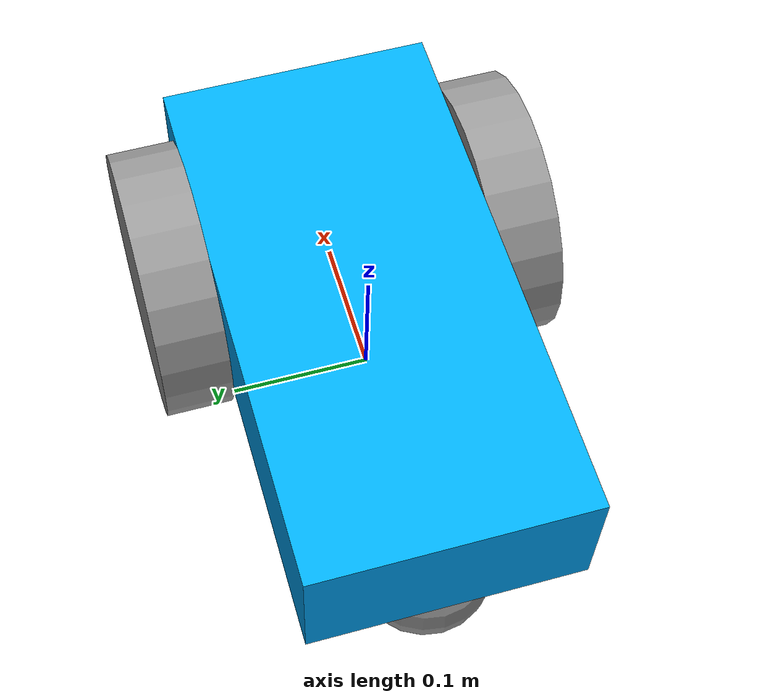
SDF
<?xml version='1.0'?>
<sdf version='1.6'>
  <model name='Robot'>
    <link name='link_0'>
      <inertial>
        <mass>9.4</mass>
        <inertia>
          <ixx>0.0391667</ixx>
          <ixy>0</ixy>
          <ixz>0</ixz>
          <iyy>0.133167</iyy>
          <iyz>0</iyz>
          <izz>0.156667</izz>
        </inertia>
        <pose frame=''>0 0 0 0 -0 0</pose>
      </inertial>
      <pose frame=''>0 0 0.05 0 -0 0</pose>
      <gravity>1</gravity>
      <self_collide>0</self_collide>
      <kinematic>0</kinematic>
      <enable_wind>0</enable_wind>
      <visual name='visual'>
        <pose frame=''>0 0 0 0 -0 0</pose>
        <geometry>
          <box>
            <size>0.4 0.2 0.1</size>
          </box>
        </geometry>
        <material>
          <lighting>1</lighting>
          <script>
            <uri>file://media/materials/scripts/gazebo.material</uri>
            <name>Gazebo/Grey</name>
          </script>
          <shader type='pixel'>
            <normal_map>__default__</normal_map>
          </shader>
          <ambient>0 0.667 1 1</ambient>
          <diffuse>0.7 0.7 0.7 1</diffuse>
          <specular>0.01 0.01 0.01 1</specular>
          <emissive>0 0 0 1</emissive>
        </material>
        <transparency>0</transparency>
        <cast_shadows>1</cast_shadows>
      </visual>
      <collision name='collision'>
        <laser_retro>0</laser_retro>
        <max_contacts>10</max_contacts>
        <pose frame=''>0 0 0 0 -0 0</pose>
        <geometry>
          <box>
            <size>0.4 0.2 0.1</size>
          </box>
        </geometry>
        <surface>
          <friction>
            <ode>
              <mu>1</mu>
              <mu2>1</mu2>
              <fdir1>0 0 0</fdir1>
              <slip1>0</slip1>
              <slip2>0</slip2>
            </ode>
            <torsional>
              <coefficient>1</coefficient>
              <patch_radius>0</patch_radius>
              <surface_radius>0</surface_radius>
              <use_patch_radius>1</use_patch_radius>
              <ode>
                <slip>0</slip>
              </ode>
            </torsional>
          </friction>
          <bounce>
            <restitution_coefficient>0</restitution_coefficient>
            <threshold>1e+06</threshold>
          </bounce>
          <contact>
            <collide_without_contact>0</collide_without_contact>
            <collide_without_contact_bitmask>1</collide_without_contact_bitmask>
            <collide_bitmask>1</collide_bitmask>
            <ode>
              <soft_cfm>0</soft_cfm>
              <soft_erp>0.2</soft_erp>
              <kp>1e+13</kp>
              <kd>1</kd>
              <max_vel>0.01</max_vel>
              <min_depth>0</min_depth>
            </ode>
            <bullet>
              <split_impulse>1</split_impulse>
              <split_impulse_penetration_threshold>-0.01</split_impulse_penetration_threshold>
              <soft_cfm>0</soft_cfm>
              <soft_erp>0.2</soft_erp>
              <kp>1e+13</kp>
              <kd>1</kd>
            </bullet>
          </contact>
        </surface>
      </collision>
    </link>
    <link name='link_0_0'>
      <inertial>
        <mass>1</mass>
        <inertia>
          <ixx>0.145833</ixx>
          <ixy>0</ixy>
          <ixz>0</ixz>
          <iyy>0.145833</iyy>
          <iyz>0</iyz>
          <izz>0.125</izz>
        </inertia>
        <pose frame=''>0 0 0 0 -0 0</pose>
      </inertial>
      <pose frame=''>0.099992 0.125029 0.014152 1.5707 -0 3.1414</pose>
      <gravity>1</gravity>
      <self_collide>0</self_collide>
      <kinematic>0</kinematic>
      <enable_wind>0</enable_wind>
      <visual name='visual'>
        <pose frame=''>0 0 0 0 -0 0</pose>
        <geometry>
          <cylinder>
            <radius>0.1</radius>
            <length>0.05</length>
          </cylinder>
        </geometry>
        <material>
          <lighting>1</lighting>
          <script>
            <uri>file://media/materials/scripts/gazebo.material</uri>
            <name>Gazebo/Grey</name>
          </script>
          <shader type='pixel'>
            <normal_map>__default__</normal_map>
          </shader>
          <ambient>0 0 0 1</ambient>
          <diffuse>0.7 0.7 0.7 1</diffuse>
          <specular>0.01 0.01 0.01 1</specular>
          <emissive>0 0 0 1</emissive>
        </material>
        <transparency>0</transparency>
        <cast_shadows>1</cast_shadows>
      </visual>
      <collision name='collision'>
        <laser_retro>0</laser_retro>
        <max_contacts>10</max_contacts>
        <pose frame=''>0 0 0 0 -0 0</pose>
        <geometry>
          <cylinder>
            <radius>0.1</radius>
            <length>0.05</length>
          </cylinder>
        </geometry>
        <surface>
          <friction>
            <ode>
              <mu>1</mu>
              <mu2>1</mu2>
              <fdir1>0 0 0</fdir1>
              <slip1>0</slip1>
              <slip2>0</slip2>
            </ode>
            <torsional>
              <coefficient>1</coefficient>
              <patch_radius>0</patch_radius>
              <surface_radius>0</surface_radius>
              <use_patch_radius>1</use_patch_radius>
              <ode>
                <slip>0</slip>
              </ode>
            </torsional>
          </friction>
          <bounce>
            <restitution_coefficient>0</restitution_coefficient>
            <threshold>1e+06</threshold>
          </bounce>
          <contact>
            <collide_without_contact>0</collide_without_contact>
            <collide_without_contact_bitmask>1</collide_without_contact_bitmask>
            <collide_bitmask>1</collide_bitmask>
            <ode>
              <soft_cfm>0</soft_cfm>
              <soft_erp>0.2</soft_erp>
              <kp>1e+13</kp>
              <kd>1</kd>
              <max_vel>0.01</max_vel>
              <min_depth>0</min_depth>
            </ode>
            <bullet>
              <split_impulse>1</split_impulse>
              <split_impulse_penetration_threshold>-0.01</split_impulse_penetration_threshold>
              <soft_cfm>0</soft_cfm>
              <soft_erp>0.2</soft_erp>
              <kp>1e+13</kp>
              <kd>1</kd>
            </bullet>
          </contact>
        </surface>
      </collision>
    </link>
    <link name='link_0_0_clone'>
      <inertial>
        <mass>1</mass>
        <inertia>
          <ixx>0.145833</ixx>
          <ixy>0</ixy>
          <ixz>0</ixz>
          <iyy>0.145833</iyy>
          <iyz>0</iyz>
          <izz>0.125</izz>
        </inertia>
        <pose frame=''>0 0 0 0 -0 0</pose>
      </inertial>
      <pose frame=''>0.1 -0.12501 0.014152 1.5707 -0 0</pose>
      <gravity>1</gravity>
      <self_collide>0</self_collide>
      <kinematic>0</kinematic>
      <enable_wind>0</enable_wind>
      <visual name='visual_0'>
        <pose frame=''>0 0 0 0 -0 0</pose>
        <geometry>
          <cylinder>
            <radius>0.1</radius>
            <length>0.05</length>
          </cylinder>
        </geometry>
        <material>
          <lighting>1</lighting>
          <script>
            <uri>file://media/materials/scripts/gazebo.material</uri>
            <name>Gazebo/Grey</name>
          </script>
          <shader type='pixel'>
            <normal_map>__default__</normal_map>
          </shader>
          <ambient>0 0 0 1</ambient>
          <diffuse>0.7 0.7 0.7 1</diffuse>
          <specular>0.01 0.01 0.01 1</specular>
          <emissive>0 0 0 1</emissive>
        </material>
        <transparency>0</transparency>
        <cast_shadows>1</cast_shadows>
      </visual>
      <collision name='collision'>
        <laser_retro>0</laser_retro>
        <max_contacts>10</max_contacts>
        <pose frame=''>0 0 0 0 -0 0</pose>
        <geometry>
          <cylinder>
            <radius>0.1</radius>
            <length>0.05</length>
          </cylinder>
        </geometry>
        <surface>
          <friction>
            <ode>
              <mu>1</mu>
              <mu2>1</mu2>
              <fdir1>0 0 0</fdir1>
              <slip1>0</slip1>
              <slip2>0</slip2>
            </ode>
            <torsional>
              <coefficient>1</coefficient>
              <patch_radius>0</patch_radius>
              <surface_radius>0</surface_radius>
              <use_patch_radius>1</use_patch_radius>
              <ode>
                <slip>0</slip>
              </ode>
            </torsional>
          </friction>
          <bounce>
            <restitution_coefficient>0</restitution_coefficient>
            <threshold>1e+06</threshold>
          </bounce>
          <contact>
            <collide_without_contact>0</collide_without_contact>
            <collide_without_contact_bitmask>1</collide_without_contact_bitmask>
            <collide_bitmask>1</collide_bitmask>
            <ode>
              <soft_cfm>0</soft_cfm>
              <soft_erp>0.2</soft_erp>
              <kp>1e+13</kp>
              <kd>1</kd>
              <max_vel>0.01</max_vel>
              <min_depth>0</min_depth>
            </ode>
            <bullet>
              <split_impulse>1</split_impulse>
              <split_impulse_penetration_threshold>-0.01</split_impulse_penetration_threshold>
              <soft_cfm>0</soft_cfm>
              <soft_erp>0.2</soft_erp>
              <kp>1e+13</kp>
              <kd>1</kd>
            </bullet>
          </contact>
        </surface>
      </collision>
    </link>
    <link name='link_1'>
      <inertial>
        <mass>0.615229</mass>
        <inertia>
          <ixx>0.00061523</ixx>
          <ixy>0</ixy>
          <ixz>0</ixz>
          <iyy>0.00061523</iyy>
          <iyz>0</iyz>
          <izz>0.00061523</izz>
        </inertia>
        <pose frame=''>0 0 0 0 -0 0</pose>
      </inertial>
      <pose frame=''>-0.15 -0 -0.04 0 -0 0</pose>
      <gravity>1</gravity>
      <self_collide>0</self_collide>
      <kinematic>0</kinematic>
      <enable_wind>0</enable_wind>
      <visual name='visual'>
        <pose frame=''>0 0 0 0 -0 0</pose>
        <geometry>
          <sphere>
            <radius>0.05</radius>
          </sphere>
        </geometry>
        <material>
          <lighting>1</lighting>
          <script>
            <uri>file://media/materials/scripts/gazebo.material</uri>
            <name>Gazebo/Grey</name>
          </script>
          <shader type='pixel'>
            <normal_map>__default__</normal_map>
          </shader>
          <ambient>0 0 0 1</ambient>
          <diffuse>0.7 0.7 0.7 1</diffuse>
          <specular>0.01 0.01 0.01 1</specular>
          <emissive>0 0 0 1</emissive>
        </material>
        <transparency>0</transparency>
        <cast_shadows>1</cast_shadows>
      </visual>
      <collision name='collision'>
        <laser_retro>0</laser_retro>
        <max_contacts>10</max_contacts>
        <pose frame=''>0 0 0 0 -0 0</pose>
        <geometry>
          <sphere>
            <radius>0.05</radius>
          </sphere>
        </geometry>
        <surface>
          <friction>
            <ode>
              <mu>0</mu>
              <mu2>0</mu2>
              <fdir1>0 0 0</fdir1>
              <slip1>1</slip1>
              <slip2>1</slip2>
            </ode>
            <torsional>
              <coefficient>1</coefficient>
              <patch_radius>0</patch_radius>
              <surface_radius>0</surface_radius>
              <use_patch_radius>1</use_patch_radius>
              <ode>
                <slip>0</slip>
              </ode>
            </torsional>
          </friction>
          <bounce>
            <restitution_coefficient>0</restitution_coefficient>
            <threshold>1e+06</threshold>
          </bounce>
          <contact>
            <collide_without_contact>0</collide_without_contact>
            <collide_without_contact_bitmask>1</collide_without_contact_bitmask>
            <collide_bitmask>1</collide_bitmask>
            <ode>
              <soft_cfm>0</soft_cfm>
              <soft_erp>0.2</soft_erp>
              <kp>1e+13</kp>
              <kd>1</kd>
              <max_vel>0.01</max_vel>
              <min_depth>0</min_depth>
            </ode>
            <bullet>
              <split_impulse>1</split_impulse>
              <split_impulse_penetration_threshold>-0.01</split_impulse_penetration_threshold>
              <soft_cfm>0</soft_cfm>
              <soft_erp>0.2</soft_erp>
              <kp>1e+13</kp>
              <kd>1</kd>
            </bullet>
          </contact>
        </surface>
      </collision>
    </link>
    <joint name='link_0_JOINT_1' type='revolute'>
      <parent>link_0</parent>
      <child>link_0_0</child>
      <pose frame=''>0 0 0 0 -0 0</pose>
      <axis>
        <xyz>0 0 1</xyz>
        <use_parent_model_frame>0</use_parent_model_frame>
        <limit>
          <lower>-1.79769e+308</lower>
          <upper>1.79769e+308</upper>
          <effort>-1</effort>
          <velocity>-1</velocity>
        </limit>
        <dynamics>
          <spring_reference>0</spring_reference>
          <spring_stiffness>0</spring_stiffness>
          <damping>0</damping>
        </dynamics>
      </axis>
      <physics>
        <ode>
          <limit>
            <cfm>0</cfm>
            <erp>0.2</erp>
          </limit>
          <suspension>
            <cfm>0</cfm>
            <erp>0.2</erp>
          </suspension>
        </ode>
      </physics>
    </joint>
    <joint name='link_0_JOINT_2' type='revolute'>
      <parent>link_0</parent>
      <child>link_0_0_clone</child>
      <pose frame=''>0 0 0 0 -0 0</pose>
      <axis>
        <xyz>0 0 1</xyz>
        <use_parent_model_frame>0</use_parent_model_frame>
        <limit>
          <lower>-1.79769e+308</lower>
          <upper>1.79769e+308</upper>
          <effort>-1</effort>
          <velocity>-1</velocity>
        </limit>
        <dynamics>
          <spring_reference>0</spring_reference>
          <spring_stiffness>0</spring_stiffness>
          <damping>0</damping>
        </dynamics>
      </axis>
      <physics>
        <ode>
          <limit>
            <cfm>0</cfm>
            <erp>0.2</erp>
          </limit>
          <suspension>
            <cfm>0</cfm>
            <erp>0.2</erp>
          </suspension>
        </ode>
      </physics>
    </joint>
    <joint name='link_0_JOINT_3' type='ball'>
      <parent>link_0</parent>
      <child>link_1</child>
      <pose frame=''>0 0 0 0 -0 0</pose>
      <physics>
        <ode>
          <limit>
            <cfm>0</cfm>
            <erp>0.2</erp>
          </limit>
          <suspension>
            <cfm>0</cfm>
            <erp>0.2</erp>
          </suspension>
        </ode>
      </physics>
    </joint>
    <static>0</static>
    <allow_auto_disable>1</allow_auto_disable>
  </model>
</sdf>
